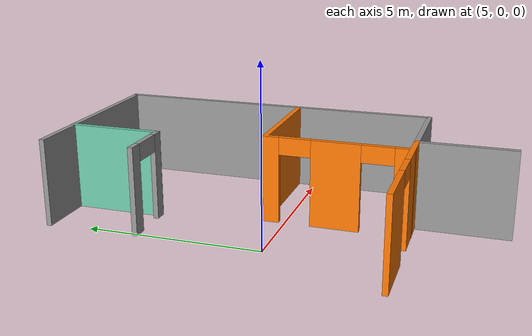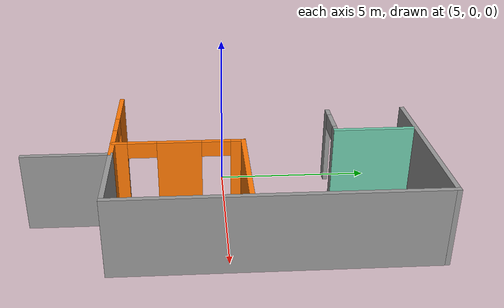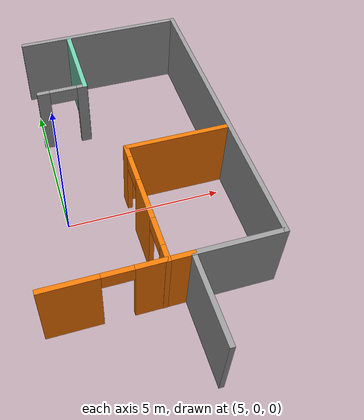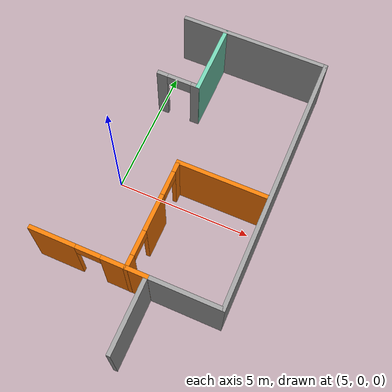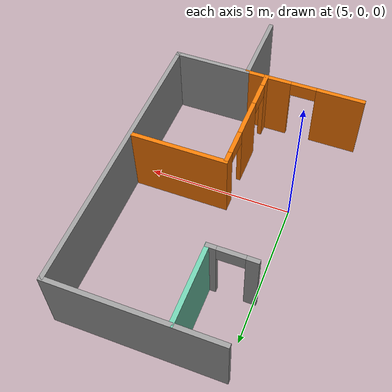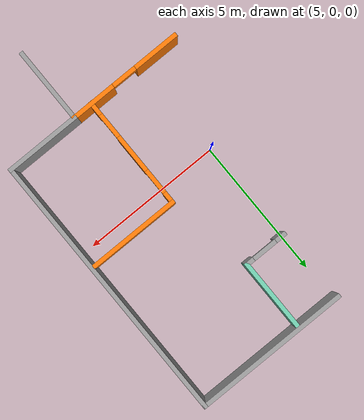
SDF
<sdf version="1.6">
 <model name="Building">
  <link name="Wall_114">
   <pose>5.74685 3.602 0 0 -0 0</pose>
   <visual name="Wall_114_Visual_0">
    <pose>-0.620125 0 1.25 0 -0 0</pose>
    <geometry><box><size>0.409749 0.15 2.5</size></box></geometry>
    <material>
     <script><uri>file://media/materials/scripts/gazebo.material</uri><name>Gazebo/Grey</name></script>
     <ambient>1 1 1 1</ambient>
     <shader type="pixel"/>
     <diffuse>0.7 0.7 0.7 1</diffuse>
     <specular>0.01 0.01 0.01 1</specular>
     <emissive>0 0 0 1</emissive>
    </material>
    <meta><layer>0</layer></meta>
   </visual>
   <visual name="Wall_114_Visual_1">
    <pose>0.654875 0 1.25 0 -0 0</pose>
    <geometry><box><size>0.340251 0.15 2.5</size></box></geometry>
    <material>
     <script><uri>file://media/materials/scripts/gazebo.material</uri><name>Gazebo/Grey</name></script>
     <ambient>1 1 1 1</ambient>
     <shader type="pixel"/>
     <diffuse>0.7 0.7 0.7 1</diffuse>
     <specular>0.01 0.01 0.01 1</specular>
     <emissive>0 0 0 1</emissive>
    </material>
    <meta><layer>0</layer></meta>
   </visual>
   <visual name="Wall_114_Visual_2">
    <pose>0.034749 0 2.25 0 -0 0</pose>
    <geometry><box><size>0.9 0.15 0.5</size></box></geometry>
    <material>
     <script><uri>file://media/materials/scripts/gazebo.material</uri><name>Gazebo/Grey</name></script>
     <ambient>1 1 1 1</ambient>
     <shader type="pixel"/>
     <diffuse>0.7 0.7 0.7 1</diffuse>
     <specular>0.01 0.01 0.01 1</specular>
     <emissive>0 0 0 1</emissive>
    </material>
    <meta><layer>0</layer></meta>
   </visual>
   <collision name="Wall_114_Collision_0">
    <pose>-0.620125 0 1.25 0 -0 0</pose>
    <geometry><box><size>0.409749 0.15 2.5</size></box></geometry>
    <surface>
     <friction>
      <ode><mu>1</mu><mu2>1</mu2><fdir1>0 0 0</fdir1><slip1>0</slip1><slip2>0</slip2></ode>
      <torsional>
       <coefficient>1</coefficient>
       <patch_radius>0</patch_radius>
       <surface_radius>0</surface_radius>
       <use_patch_radius>1</use_patch_radius>
       <ode><slip>0</slip></ode>
      </torsional>
     </friction>
     <bounce><restitution_coefficient>0</restitution_coefficient><threshold>1e+06</threshold></bounce>
     <contact>
      <collide_without_contact>0</collide_without_contact>
      <collide_without_contact_bitmask>1</collide_without_contact_bitmask>
      <collide_bitmask>1</collide_bitmask>
      <ode>
       <soft_cfm>0</soft_cfm>
       <soft_erp>0.2</soft_erp>
       <kp>1e+13</kp>
       <kd>1</kd>
       <max_vel>0.01</max_vel>
       <min_depth>0</min_depth>
      </ode>
      <bullet>
       <split_impulse>1</split_impulse>
       <split_impulse_penetration_threshold>-0.01</split_impulse_penetration_threshold>
       <soft_cfm>0</soft_cfm>
       <soft_erp>0.2</soft_erp>
       <kp>1e+13</kp>
       <kd>1</kd>
      </bullet>
     </contact>
    </surface>
   </collision>
   <collision name="Wall_114_Collision_1">
    <pose>0.654875 0 1.25 0 -0 0</pose>
    <geometry><box><size>0.340251 0.15 2.5</size></box></geometry>
    <surface>
     <friction>
      <ode><mu>1</mu><mu2>1</mu2><fdir1>0 0 0</fdir1><slip1>0</slip1><slip2>0</slip2></ode>
      <torsional>
       <coefficient>1</coefficient>
       <patch_radius>0</patch_radius>
       <surface_radius>0</surface_radius>
       <use_patch_radius>1</use_patch_radius>
       <ode><slip>0</slip></ode>
      </torsional>
     </friction>
     <bounce><restitution_coefficient>0</restitution_coefficient><threshold>1e+06</threshold></bounce>
     <contact>
      <collide_without_contact>0</collide_without_contact>
      <collide_without_contact_bitmask>1</collide_without_contact_bitmask>
      <collide_bitmask>1</collide_bitmask>
      <ode>
       <soft_cfm>0</soft_cfm>
       <soft_erp>0.2</soft_erp>
       <kp>1e+13</kp>
       <kd>1</kd>
       <max_vel>0.01</max_vel>
       <min_depth>0</min_depth>
      </ode>
      <bullet>
       <split_impulse>1</split_impulse>
       <split_impulse_penetration_threshold>-0.01</split_impulse_penetration_threshold>
       <soft_cfm>0</soft_cfm>
       <soft_erp>0.2</soft_erp>
       <kp>1e+13</kp>
       <kd>1</kd>
      </bullet>
     </contact>
    </surface>
   </collision>
   <collision name="Wall_114_Collision_2">
    <pose>0.034749 0 2.25 0 -0 0</pose>
    <geometry><box><size>0.9 0.15 0.5</size></box></geometry>
    <surface>
     <friction>
      <ode><mu>1</mu><mu2>1</mu2><fdir1>0 0 0</fdir1><slip1>0</slip1><slip2>0</slip2></ode>
      <torsional>
       <coefficient>1</coefficient>
       <patch_radius>0</patch_radius>
       <surface_radius>0</surface_radius>
       <use_patch_radius>1</use_patch_radius>
       <ode><slip>0</slip></ode>
      </torsional>
     </friction>
     <bounce><restitution_coefficient>0</restitution_coefficient><threshold>1e+06</threshold></bounce>
     <contact>
      <collide_without_contact>0</collide_without_contact>
      <collide_without_contact_bitmask>1</collide_without_contact_bitmask>
      <collide_bitmask>1</collide_bitmask>
      <ode>
       <soft_cfm>0</soft_cfm>
       <soft_erp>0.2</soft_erp>
       <kp>1e+13</kp>
       <kd>1</kd>
       <max_vel>0.01</max_vel>
       <min_depth>0</min_depth>
      </ode>
      <bullet>
       <split_impulse>1</split_impulse>
       <split_impulse_penetration_threshold>-0.01</split_impulse_penetration_threshold>
       <soft_cfm>0</soft_cfm>
       <soft_erp>0.2</soft_erp>
       <kp>1e+13</kp>
       <kd>1</kd>
      </bullet>
     </contact>
    </surface>
   </collision>
  </link>
  <link name="Wall_116">
   <pose>6.50779 4.9025 0 0 -0 1.5708</pose>
   <visual name="Wall_116_Visual">
    <pose>0 0 1.25 0 -0 0</pose>
    <geometry><box><size>2.75 0.15 2.5</size></box></geometry>
    <material>
     <script><uri>file://media/materials/scripts/gazebo.material</uri><name>Gazebo/Grey</name></script>
     <ambient>0.435294 0.796078 0.67451 1</ambient>
     <shader type="pixel"/>
     <diffuse>0.7 0.7 0.7 1</diffuse>
     <specular>0.01 0.01 0.01 1</specular>
     <emissive>0 0 0 1</emissive>
    </material>
    <meta><layer>0</layer></meta>
   </visual>
   <collision name="Wall_116_Collision">
    <pose>0 0 1.25 0 -0 0</pose>
    <geometry><box><size>2.75 0.15 2.5</size></box></geometry>
    <surface>
     <friction>
      <ode><mu>1</mu><mu2>1</mu2><fdir1>0 0 0</fdir1><slip1>0</slip1><slip2>0</slip2></ode>
      <torsional>
       <coefficient>1</coefficient>
       <patch_radius>0</patch_radius>
       <surface_radius>0</surface_radius>
       <use_patch_radius>1</use_patch_radius>
       <ode><slip>0</slip></ode>
      </torsional>
     </friction>
     <bounce><restitution_coefficient>0</restitution_coefficient><threshold>1e+06</threshold></bounce>
     <contact>
      <collide_without_contact>0</collide_without_contact>
      <collide_without_contact_bitmask>1</collide_without_contact_bitmask>
      <collide_bitmask>1</collide_bitmask>
      <ode>
       <soft_cfm>0</soft_cfm>
       <soft_erp>0.2</soft_erp>
       <kp>1e+13</kp>
       <kd>1</kd>
       <max_vel>0.01</max_vel>
       <min_depth>0</min_depth>
      </ode>
      <bullet>
       <split_impulse>1</split_impulse>
       <split_impulse_penetration_threshold>-0.01</split_impulse_penetration_threshold>
       <soft_cfm>0</soft_cfm>
       <soft_erp>0.2</soft_erp>
       <kp>1e+13</kp>
       <kd>1</kd>
      </bullet>
     </contact>
    </surface>
   </collision>
  </link>
  <link name="Wall_120">
   <pose>7.77481 -4.83428 0 0 -0 1.57077</pose>
   <inertial>
    <mass>1</mass>
    <inertia><ixx>1</ixx><ixy>0</ixy><ixz>0</ixz><iyy>1</iyy><iyz>0</iyz><izz>1</izz></inertia>
   </inertial>
   <visual name="Wall_120_Visual">
    <pose>0 0 1.25 0 -0 0</pose>
    <geometry><box><size>2.6 0.15 2.5</size></box></geometry>
    <material>
     <script><uri>file://media/materials/scripts/gazebo.material</uri><name>Gazebo/Grey</name></script>
     <ambient>1 1 1 1</ambient>
     <shader type="pixel"><normal_map>__default__</normal_map></shader>
     <diffuse>0.7 0.7 0.7 1</diffuse>
     <specular>0.01 0.01 0.01 1</specular>
     <emissive>0 0 0 1</emissive>
    </material>
    <meta><layer>0</layer></meta>
   </visual>
   <collision name="Wall_120_Collision">
    <pose>0 0 1.25 0 -0 0</pose>
    <geometry><box><size>2.6 0.15 2.5</size></box></geometry>
    <surface>
     <friction>
      <ode><mu>1</mu><mu2>1</mu2><fdir1>0 0 0</fdir1><slip1>0</slip1><slip2>0</slip2></ode>
      <torsional>
       <coefficient>1</coefficient>
       <patch_radius>0</patch_radius>
       <surface_radius>0</surface_radius>
       <use_patch_radius>1</use_patch_radius>
       <ode><slip>0</slip></ode>
      </torsional>
     </friction>
     <bounce><restitution_coefficient>0</restitution_coefficient><threshold>1e+06</threshold></bounce>
     <contact>
      <collide_without_contact>0</collide_without_contact>
      <collide_without_contact_bitmask>1</collide_without_contact_bitmask>
      <collide_bitmask>1</collide_bitmask>
      <ode>
       <soft_cfm>0</soft_cfm>
       <soft_erp>0.2</soft_erp>
       <kp>1e+13</kp>
       <kd>1</kd>
       <max_vel>0.01</max_vel>
       <min_depth>0</min_depth>
      </ode>
      <bullet>
       <split_impulse>1</split_impulse>
       <split_impulse_penetration_threshold>-0.01</split_impulse_penetration_threshold>
       <soft_cfm>0</soft_cfm>
       <soft_erp>0.2</soft_erp>
       <kp>1e+13</kp>
       <kd>1</kd>
      </bullet>
     </contact>
    </surface>
   </collision>
  </link>
  <link name="Wall_122">
   <pose>7.07785 -1.4415 0 0 -0 1.5708</pose>
   <visual name="Wall_122_Visual_0">
    <pose>-1.82998 0 1.25 0 -0 0</pose>
    <geometry><box><size>0.532998 0.15 2.5</size></box></geometry>
    <material>
     <script><uri>file://media/materials/scripts/gazebo.material</uri><name>Gazebo/Grey</name></script>
     <ambient>0.996078 0.47451 0.0196078 1</ambient>
     <shader type="pixel"/>
     <diffuse>0.7 0.7 0.7 1</diffuse>
     <specular>0.01 0.01 0.01 1</specular>
     <emissive>0 0 0 1</emissive>
    </material>
    <meta><layer>0</layer></meta>
   </visual>
   <visual name="Wall_122_Visual_1">
    <pose>0.029829 0 1.25 0 -0 0</pose>
    <geometry><box><size>1.38662 0.15 2.5</size></box></geometry>
    <material>
     <script><uri>file://media/materials/scripts/gazebo.material</uri><name>Gazebo/Grey</name></script>
     <ambient>0.996078 0.47451 0.0196078 1</ambient>
     <shader type="pixel"/>
     <diffuse>0.7 0.7 0.7 1</diffuse>
     <specular>0.01 0.01 0.01 1</specular>
     <emissive>0 0 0 1</emissive>
    </material>
    <meta><layer>0</layer></meta>
   </visual>
   <visual name="Wall_122_Visual_2">
    <pose>1.85981 0 1.25 0 -0 0</pose>
    <geometry><box><size>0.473341 0.15 2.5</size></box></geometry>
    <material>
     <script><uri>file://media/materials/scripts/gazebo.material</uri><name>Gazebo/Grey</name></script>
     <ambient>0.996078 0.47451 0.0196078 1</ambient>
     <shader type="pixel"/>
     <diffuse>0.7 0.7 0.7 1</diffuse>
     <specular>0.01 0.01 0.01 1</specular>
     <emissive>0 0 0 1</emissive>
    </material>
    <meta><layer>0</layer></meta>
   </visual>
   <visual name="Wall_122_Visual_3">
    <pose>-1.11348 0 2.25 0 -0 0</pose>
    <geometry><box><size>0.9 0.15 0.5</size></box></geometry>
    <material>
     <script><uri>file://media/materials/scripts/gazebo.material</uri><name>Gazebo/Grey</name></script>
     <ambient>0.996078 0.47451 0.0196078 1</ambient>
     <shader type="pixel"/>
     <diffuse>0.7 0.7 0.7 1</diffuse>
     <specular>0.01 0.01 0.01 1</specular>
     <emissive>0 0 0 1</emissive>
    </material>
    <meta><layer>0</layer></meta>
   </visual>
   <visual name="Wall_122_Visual_4">
    <pose>1.17314 0 2.25 0 -0 0</pose>
    <geometry><box><size>0.9 0.15 0.5</size></box></geometry>
    <material>
     <script><uri>file://media/materials/scripts/gazebo.material</uri><name>Gazebo/Grey</name></script>
     <ambient>0.996078 0.47451 0.0196078 1</ambient>
     <shader type="pixel"/>
     <diffuse>0.7 0.7 0.7 1</diffuse>
     <specular>0.01 0.01 0.01 1</specular>
     <emissive>0 0 0 1</emissive>
    </material>
    <meta><layer>0</layer></meta>
   </visual>
   <collision name="Wall_122_Collision_0">
    <pose>-1.82998 0 1.25 0 -0 0</pose>
    <geometry><box><size>0.532998 0.15 2.5</size></box></geometry>
    <surface>
     <friction>
      <ode><mu>1</mu><mu2>1</mu2><fdir1>0 0 0</fdir1><slip1>0</slip1><slip2>0</slip2></ode>
      <torsional>
       <coefficient>1</coefficient>
       <patch_radius>0</patch_radius>
       <surface_radius>0</surface_radius>
       <use_patch_radius>1</use_patch_radius>
       <ode><slip>0</slip></ode>
      </torsional>
     </friction>
     <bounce><restitution_coefficient>0</restitution_coefficient><threshold>1e+06</threshold></bounce>
     <contact>
      <collide_without_contact>0</collide_without_contact>
      <collide_without_contact_bitmask>1</collide_without_contact_bitmask>
      <collide_bitmask>1</collide_bitmask>
      <ode>
       <soft_cfm>0</soft_cfm>
       <soft_erp>0.2</soft_erp>
       <kp>1e+13</kp>
       <kd>1</kd>
       <max_vel>0.01</max_vel>
       <min_depth>0</min_depth>
      </ode>
      <bullet>
       <split_impulse>1</split_impulse>
       <split_impulse_penetration_threshold>-0.01</split_impulse_penetration_threshold>
       <soft_cfm>0</soft_cfm>
       <soft_erp>0.2</soft_erp>
       <kp>1e+13</kp>
       <kd>1</kd>
      </bullet>
     </contact>
    </surface>
   </collision>
   <collision name="Wall_122_Collision_1">
    <pose>0.029829 0 1.25 0 -0 0</pose>
    <geometry><box><size>1.38662 0.15 2.5</size></box></geometry>
    <surface>
     <friction>
      <ode><mu>1</mu><mu2>1</mu2><fdir1>0 0 0</fdir1><slip1>0</slip1><slip2>0</slip2></ode>
      <torsional>
       <coefficient>1</coefficient>
       <patch_radius>0</patch_radius>
       <surface_radius>0</surface_radius>
       <use_patch_radius>1</use_patch_radius>
       <ode><slip>0</slip></ode>
      </torsional>
     </friction>
     <bounce><restitution_coefficient>0</restitution_coefficient><threshold>1e+06</threshold></bounce>
     <contact>
      <collide_without_contact>0</collide_without_contact>
      <collide_without_contact_bitmask>1</collide_without_contact_bitmask>
      <collide_bitmask>1</collide_bitmask>
      <ode>
       <soft_cfm>0</soft_cfm>
       <soft_erp>0.2</soft_erp>
       <kp>1e+13</kp>
       <kd>1</kd>
       <max_vel>0.01</max_vel>
       <min_depth>0</min_depth>
      </ode>
      <bullet>
       <split_impulse>1</split_impulse>
       <split_impulse_penetration_threshold>-0.01</split_impulse_penetration_threshold>
       <soft_cfm>0</soft_cfm>
       <soft_erp>0.2</soft_erp>
       <kp>1e+13</kp>
       <kd>1</kd>
      </bullet>
     </contact>
    </surface>
   </collision>
   <collision name="Wall_122_Collision_3">
    <pose>-1.11348 0 2.25 0 -0 0</pose>
    <geometry><box><size>0.9 0.15 0.5</size></box></geometry>
    <surface>
     <friction>
      <ode><mu>1</mu><mu2>1</mu2><fdir1>0 0 0</fdir1><slip1>0</slip1><slip2>0</slip2></ode>
      <torsional>
       <coefficient>1</coefficient>
       <patch_radius>0</patch_radius>
       <surface_radius>0</surface_radius>
       <use_patch_radius>1</use_patch_radius>
       <ode><slip>0</slip></ode>
      </torsional>
     </friction>
     <bounce><restitution_coefficient>0</restitution_coefficient><threshold>1e+06</threshold></bounce>
     <contact>
      <collide_without_contact>0</collide_without_contact>
      <collide_without_contact_bitmask>1</collide_without_contact_bitmask>
      <collide_bitmask>1</collide_bitmask>
      <ode>
       <soft_cfm>0</soft_cfm>
       <soft_erp>0.2</soft_erp>
       <kp>1e+13</kp>
       <kd>1</kd>
       <max_vel>0.01</max_vel>
       <min_depth>0</min_depth>
      </ode>
      <bullet>
       <split_impulse>1</split_impulse>
       <split_impulse_penetration_threshold>-0.01</split_impulse_penetration_threshold>
       <soft_cfm>0</soft_cfm>
       <soft_erp>0.2</soft_erp>
       <kp>1e+13</kp>
       <kd>1</kd>
      </bullet>
     </contact>
    </surface>
   </collision>
   <collision name="Wall_122_Collision_2">
    <pose>1.85981 0 1.25 0 -0 0</pose>
    <geometry><box><size>0.473341 0.15 2.5</size></box></geometry>
    <surface>
     <friction>
      <ode><mu>1</mu><mu2>1</mu2><fdir1>0 0 0</fdir1><slip1>0</slip1><slip2>0</slip2></ode>
      <torsional>
       <coefficient>1</coefficient>
       <patch_radius>0</patch_radius>
       <surface_radius>0</surface_radius>
       <use_patch_radius>1</use_patch_radius>
       <ode><slip>0</slip></ode>
      </torsional>
     </friction>
     <bounce><restitution_coefficient>0</restitution_coefficient><threshold>1e+06</threshold></bounce>
     <contact>
      <collide_without_contact>0</collide_without_contact>
      <collide_without_contact_bitmask>1</collide_without_contact_bitmask>
      <collide_bitmask>1</collide_bitmask>
      <ode>
       <soft_cfm>0</soft_cfm>
       <soft_erp>0.2</soft_erp>
       <kp>1e+13</kp>
       <kd>1</kd>
       <max_vel>0.01</max_vel>
       <min_depth>0</min_depth>
      </ode>
      <bullet>
       <split_impulse>1</split_impulse>
       <split_impulse_penetration_threshold>-0.01</split_impulse_penetration_threshold>
       <soft_cfm>0</soft_cfm>
       <soft_erp>0.2</soft_erp>
       <kp>1e+13</kp>
       <kd>1</kd>
      </bullet>
     </contact>
    </surface>
   </collision>
   <collision name="Wall_122_Collision_4">
    <pose>1.17314 0 2.25 0 -0 0</pose>
    <geometry><box><size>0.9 0.15 0.5</size></box></geometry>
    <surface>
     <friction>
      <ode><mu>1</mu><mu2>1</mu2><fdir1>0 0 0</fdir1><slip1>0</slip1><slip2>0</slip2></ode>
      <torsional>
       <coefficient>1</coefficient>
       <patch_radius>0</patch_radius>
       <surface_radius>0</surface_radius>
       <use_patch_radius>1</use_patch_radius>
       <ode><slip>0</slip></ode>
      </torsional>
     </friction>
     <bounce><restitution_coefficient>0</restitution_coefficient><threshold>1e+06</threshold></bounce>
     <contact>
      <collide_without_contact>0</collide_without_contact>
      <collide_without_contact_bitmask>1</collide_without_contact_bitmask>
      <collide_bitmask>1</collide_bitmask>
      <ode>
       <soft_cfm>0</soft_cfm>
       <soft_erp>0.2</soft_erp>
       <kp>1e+13</kp>
       <kd>1</kd>
       <max_vel>0.01</max_vel>
       <min_depth>0</min_depth>
      </ode>
      <bullet>
       <split_impulse>1</split_impulse>
       <split_impulse_penetration_threshold>-0.01</split_impulse_penetration_threshold>
       <soft_cfm>0</soft_cfm>
       <soft_erp>0.2</soft_erp>
       <kp>1e+13</kp>
       <kd>1</kd>
      </bullet>
     </contact>
    </surface>
   </collision>
  </link>
  <link name="Wall_123">
   <pose>8.65985 0.580004 0 0 -0 0</pose>
   <visual name="Wall_123_Visual">
    <pose>0 0 1.25 0 -0 0</pose>
    <geometry><box><size>3.314 0.15 2.5</size></box></geometry>
    <material>
     <script><uri>file://media/materials/scripts/gazebo.material</uri><name>Gazebo/Grey</name></script>
     <ambient>0.996078 0.47451 0.0196078 1</ambient>
     <shader type="pixel"/>
     <diffuse>0.7 0.7 0.7 1</diffuse>
     <specular>0.01 0.01 0.01 1</specular>
     <emissive>0 0 0 1</emissive>
    </material>
    <meta><layer>0</layer></meta>
   </visual>
   <collision name="Wall_123_Collision">
    <pose>0 0 1.25 0 -0 0</pose>
    <geometry><box><size>3.314 0.15 2.5</size></box></geometry>
    <surface>
     <friction>
      <ode><mu>1</mu><mu2>1</mu2><fdir1>0 0 0</fdir1><slip1>0</slip1><slip2>0</slip2></ode>
      <torsional>
       <coefficient>1</coefficient>
       <patch_radius>0</patch_radius>
       <surface_radius>0</surface_radius>
       <use_patch_radius>1</use_patch_radius>
       <ode><slip>0</slip></ode>
      </torsional>
     </friction>
     <bounce><restitution_coefficient>0</restitution_coefficient><threshold>1e+06</threshold></bounce>
     <contact>
      <collide_without_contact>0</collide_without_contact>
      <collide_without_contact_bitmask>1</collide_without_contact_bitmask>
      <collide_bitmask>1</collide_bitmask>
      <ode>
       <soft_cfm>0</soft_cfm>
       <soft_erp>0.2</soft_erp>
       <kp>1e+13</kp>
       <kd>1</kd>
       <max_vel>0.01</max_vel>
       <min_depth>0</min_depth>
      </ode>
      <bullet>
       <split_impulse>1</split_impulse>
       <split_impulse_penetration_threshold>-0.01</split_impulse_penetration_threshold>
       <soft_cfm>0</soft_cfm>
       <soft_erp>0.2</soft_erp>
       <kp>1e+13</kp>
       <kd>1</kd>
      </bullet>
     </contact>
    </surface>
   </collision>
  </link>
  <link name="Wall_14">
   <pose>10.375 1.37771 0 0 -0 1.57083</pose>
   <visual name="Wall_14_Visual">
    <pose>0 0 1.25 0 -0 0</pose>
    <geometry><box><size>9.81812 0.15 2.5</size></box></geometry>
    <material>
     <script><uri>file://media/materials/scripts/gazebo.material</uri><name>Gazebo/Grey</name></script>
     <ambient>1 1 1 1</ambient>
     <shader type="pixel"/>
     <diffuse>0.7 0.7 0.7 1</diffuse>
     <specular>0.01 0.01 0.01 1</specular>
     <emissive>0 0 0 1</emissive>
    </material>
    <meta><layer>0</layer></meta>
   </visual>
   <collision name="Wall_14_Collision">
    <pose>0 0 1.25 0 -0 0</pose>
    <geometry><box><size>9.81812 0.15 2.5</size></box></geometry>
    <surface>
     <friction>
      <ode><mu>1</mu><mu2>1</mu2><fdir1>0 0 0</fdir1><slip1>0</slip1><slip2>0</slip2></ode>
      <torsional>
       <coefficient>1</coefficient>
       <patch_radius>0</patch_radius>
       <surface_radius>0</surface_radius>
       <use_patch_radius>1</use_patch_radius>
       <ode><slip>0</slip></ode>
      </torsional>
     </friction>
     <bounce><restitution_coefficient>0</restitution_coefficient><threshold>1e+06</threshold></bounce>
     <contact>
      <collide_without_contact>0</collide_without_contact>
      <collide_without_contact_bitmask>1</collide_without_contact_bitmask>
      <collide_bitmask>1</collide_bitmask>
      <ode>
       <soft_cfm>0</soft_cfm>
       <soft_erp>0.2</soft_erp>
       <kp>1e+13</kp>
       <kd>1</kd>
       <max_vel>0.01</max_vel>
       <min_depth>0</min_depth>
      </ode>
      <bullet>
       <split_impulse>1</split_impulse>
       <split_impulse_penetration_threshold>-0.01</split_impulse_penetration_threshold>
       <soft_cfm>0</soft_cfm>
       <soft_erp>0.2</soft_erp>
       <kp>1e+13</kp>
       <kd>1</kd>
      </bullet>
     </contact>
    </surface>
   </collision>
  </link>
  <link name="Wall_140">
   <pose>9.07503 -3.45679 0 0 0 -3.14144</pose>
   <visual name="Wall_140_Visual">
    <pose>0 0 1.25 0 -0 0</pose>
    <geometry><box><size>2.75 0.15 2.5</size></box></geometry>
    <material>
     <script><uri>file://media/materials/scripts/gazebo.material</uri><name>Gazebo/Grey</name></script>
     <ambient>1 1 1 1</ambient>
     <shader type="pixel"/>
     <diffuse>0.7 0.7 0.7 1</diffuse>
     <specular>0.01 0.01 0.01 1</specular>
     <emissive>0 0 0 1</emissive>
    </material>
    <meta><layer>0</layer></meta>
   </visual>
   <collision name="Wall_140_Collision">
    <pose>0 0 1.25 0 -0 0</pose>
    <geometry><box><size>2.75 0.15 2.5</size></box></geometry>
    <surface>
     <friction>
      <ode><mu>1</mu><mu2>1</mu2><fdir1>0 0 0</fdir1><slip1>0</slip1><slip2>0</slip2></ode>
      <torsional>
       <coefficient>1</coefficient>
       <patch_radius>0</patch_radius>
       <surface_radius>0</surface_radius>
       <use_patch_radius>1</use_patch_radius>
       <ode><slip>0</slip></ode>
      </torsional>
     </friction>
     <bounce><restitution_coefficient>0</restitution_coefficient><threshold>1e+06</threshold></bounce>
     <contact>
      <collide_without_contact>0</collide_without_contact>
      <collide_without_contact_bitmask>1</collide_without_contact_bitmask>
      <collide_bitmask>1</collide_bitmask>
      <ode>
       <soft_cfm>0</soft_cfm>
       <soft_erp>0.2</soft_erp>
       <kp>1e+13</kp>
       <kd>1</kd>
       <max_vel>0.01</max_vel>
       <min_depth>0</min_depth>
      </ode>
      <bullet>
       <split_impulse>1</split_impulse>
       <split_impulse_penetration_threshold>-0.01</split_impulse_penetration_threshold>
       <soft_cfm>0</soft_cfm>
       <soft_erp>0.2</soft_erp>
       <kp>1e+13</kp>
       <kd>1</kd>
      </bullet>
     </contact>
    </surface>
   </collision>
  </link>
  <link name="Wall_144">
   <pose>5.72485 -3.457 0 0 -0 3.14159</pose>
   <visual name="Wall_144_Visual_0">
    <pose>-1.29414 0 1.25 0 -0 0</pose>
    <geometry><box><size>1.66172 0.15 2.5</size></box></geometry>
    <material>
     <script><uri>file://media/materials/scripts/gazebo.material</uri><name>Gazebo/Grey</name></script>
     <ambient>0.996078 0.47451 0.0196078 1</ambient>
     <shader type="pixel"/>
     <diffuse>0.7 0.7 0.7 1</diffuse>
     <specular>0.01 0.01 0.01 1</specular>
     <emissive>0 0 0 1</emissive>
    </material>
    <meta><layer>0</layer></meta>
   </visual>
   <visual name="Wall_144_Visual_1">
    <pose>1.28086 0 1.25 0 -0 0</pose>
    <geometry><box><size>1.68829 0.15 2.5</size></box></geometry>
    <material>
     <script><uri>file://media/materials/scripts/gazebo.material</uri><name>Gazebo/Grey</name></script>
     <ambient>0.996078 0.47451 0.0196078 1</ambient>
     <shader type="pixel"/>
     <diffuse>0.7 0.7 0.7 1</diffuse>
     <specular>0.01 0.01 0.01 1</specular>
     <emissive>0 0 0 1</emissive>
    </material>
    <meta><layer>0</layer></meta>
   </visual>
   <visual name="Wall_144_Visual_2">
    <pose>-0.013285 0 2.25 0 -0 0</pose>
    <geometry><box><size>0.9 0.15 0.5</size></box></geometry>
    <material>
     <script><uri>file://media/materials/scripts/gazebo.material</uri><name>Gazebo/Grey</name></script>
     <ambient>0.996078 0.47451 0.0196078 1</ambient>
     <shader type="pixel"/>
     <diffuse>0.7 0.7 0.7 1</diffuse>
     <specular>0.01 0.01 0.01 1</specular>
     <emissive>0 0 0 1</emissive>
    </material>
    <meta><layer>0</layer></meta>
   </visual>
   <collision name="Wall_144_Collision_0">
    <pose>-1.29414 0 1.25 0 -0 0</pose>
    <geometry><box><size>1.66172 0.15 2.5</size></box></geometry>
    <surface>
     <friction>
      <ode><mu>1</mu><mu2>1</mu2><fdir1>0 0 0</fdir1><slip1>0</slip1><slip2>0</slip2></ode>
      <torsional>
       <coefficient>1</coefficient>
       <patch_radius>0</patch_radius>
       <surface_radius>0</surface_radius>
       <use_patch_radius>1</use_patch_radius>
       <ode><slip>0</slip></ode>
      </torsional>
     </friction>
     <bounce><restitution_coefficient>0</restitution_coefficient><threshold>1e+06</threshold></bounce>
     <contact>
      <collide_without_contact>0</collide_without_contact>
      <collide_without_contact_bitmask>1</collide_without_contact_bitmask>
      <collide_bitmask>1</collide_bitmask>
      <ode>
       <soft_cfm>0</soft_cfm>
       <soft_erp>0.2</soft_erp>
       <kp>1e+13</kp>
       <kd>1</kd>
       <max_vel>0.01</max_vel>
       <min_depth>0</min_depth>
      </ode>
      <bullet>
       <split_impulse>1</split_impulse>
       <split_impulse_penetration_threshold>-0.01</split_impulse_penetration_threshold>
       <soft_cfm>0</soft_cfm>
       <soft_erp>0.2</soft_erp>
       <kp>1e+13</kp>
       <kd>1</kd>
      </bullet>
     </contact>
    </surface>
   </collision>
   <collision name="Wall_144_Collision_1">
    <pose>1.28086 0 1.25 0 -0 0</pose>
    <geometry><box><size>1.68829 0.15 2.5</size></box></geometry>
    <surface>
     <friction>
      <ode><mu>1</mu><mu2>1</mu2><fdir1>0 0 0</fdir1><slip1>0</slip1><slip2>0</slip2></ode>
      <torsional>
       <coefficient>1</coefficient>
       <patch_radius>0</patch_radius>
       <surface_radius>0</surface_radius>
       <use_patch_radius>1</use_patch_radius>
       <ode><slip>0</slip></ode>
      </torsional>
     </friction>
     <bounce><restitution_coefficient>0</restitution_coefficient><threshold>1e+06</threshold></bounce>
     <contact>
      <collide_without_contact>0</collide_without_contact>
      <collide_without_contact_bitmask>1</collide_without_contact_bitmask>
      <collide_bitmask>1</collide_bitmask>
      <ode>
       <soft_cfm>0</soft_cfm>
       <soft_erp>0.2</soft_erp>
       <kp>1e+13</kp>
       <kd>1</kd>
       <max_vel>0.01</max_vel>
       <min_depth>0</min_depth>
      </ode>
      <bullet>
       <split_impulse>1</split_impulse>
       <split_impulse_penetration_threshold>-0.01</split_impulse_penetration_threshold>
       <soft_cfm>0</soft_cfm>
       <soft_erp>0.2</soft_erp>
       <kp>1e+13</kp>
       <kd>1</kd>
      </bullet>
     </contact>
    </surface>
   </collision>
   <collision name="Wall_144_Collision_2">
    <pose>-0.013285 0 2.25 0 -0 0</pose>
    <geometry><box><size>0.9 0.15 0.5</size></box></geometry>
    <surface>
     <friction>
      <ode><mu>1</mu><mu2>1</mu2><fdir1>0 0 0</fdir1><slip1>0</slip1><slip2>0</slip2></ode>
      <torsional>
       <coefficient>1</coefficient>
       <patch_radius>0</patch_radius>
       <surface_radius>0</surface_radius>
       <use_patch_radius>1</use_patch_radius>
       <ode><slip>0</slip></ode>
      </torsional>
     </friction>
     <bounce><restitution_coefficient>0</restitution_coefficient><threshold>1e+06</threshold></bounce>
     <contact>
      <collide_without_contact>0</collide_without_contact>
      <collide_without_contact_bitmask>1</collide_without_contact_bitmask>
      <collide_bitmask>1</collide_bitmask>
      <ode>
       <soft_cfm>0</soft_cfm>
       <soft_erp>0.2</soft_erp>
       <kp>1e+13</kp>
       <kd>1</kd>
       <max_vel>0.01</max_vel>
       <min_depth>0</min_depth>
      </ode>
      <bullet>
       <split_impulse>1</split_impulse>
       <split_impulse_penetration_threshold>-0.01</split_impulse_penetration_threshold>
       <soft_cfm>0</soft_cfm>
       <soft_erp>0.2</soft_erp>
       <kp>1e+13</kp>
       <kd>1</kd>
      </bullet>
     </contact>
    </surface>
   </collision>
  </link>
  <link name="Wall_15">
   <pose>7.64985 6.212 0 0 -0 3.14159</pose>
   <visual name="Wall_15_Visual">
    <pose>0 0 1.25 0 -0 0</pose>
    <geometry><box><size>5.6005 0.15 2.5</size></box></geometry>
    <material>
     <script><uri>file://media/materials/scripts/gazebo.material</uri><name>Gazebo/Grey</name></script>
     <ambient>1 1 1 1</ambient>
     <shader type="pixel"/>
     <diffuse>0.7 0.7 0.7 1</diffuse>
     <specular>0.01 0.01 0.01 1</specular>
     <emissive>0 0 0 1</emissive>
    </material>
    <meta><layer>0</layer></meta>
   </visual>
   <collision name="Wall_15_Collision">
    <pose>0 0 1.25 0 -0 0</pose>
    <geometry><box><size>5.6005 0.15 2.5</size></box></geometry>
    <surface>
     <friction>
      <ode><mu>1</mu><mu2>1</mu2><fdir1>0 0 0</fdir1><slip1>0</slip1><slip2>0</slip2></ode>
      <torsional>
       <coefficient>1</coefficient>
       <patch_radius>0</patch_radius>
       <surface_radius>0</surface_radius>
       <use_patch_radius>1</use_patch_radius>
       <ode><slip>0</slip></ode>
      </torsional>
     </friction>
     <bounce><restitution_coefficient>0</restitution_coefficient><threshold>1e+06</threshold></bounce>
     <contact>
      <collide_without_contact>0</collide_without_contact>
      <collide_without_contact_bitmask>1</collide_without_contact_bitmask>
      <collide_bitmask>1</collide_bitmask>
      <ode>
       <soft_cfm>0</soft_cfm>
       <soft_erp>0.2</soft_erp>
       <kp>1e+13</kp>
       <kd>1</kd>
       <max_vel>0.01</max_vel>
       <min_depth>0</min_depth>
      </ode>
      <bullet>
       <split_impulse>1</split_impulse>
       <split_impulse_penetration_threshold>-0.01</split_impulse_penetration_threshold>
       <soft_cfm>0</soft_cfm>
       <soft_erp>0.2</soft_erp>
       <kp>1e+13</kp>
       <kd>1</kd>
      </bullet>
     </contact>
    </surface>
   </collision>
  </link>
  <static>1</static>
 </model>
</sdf>
